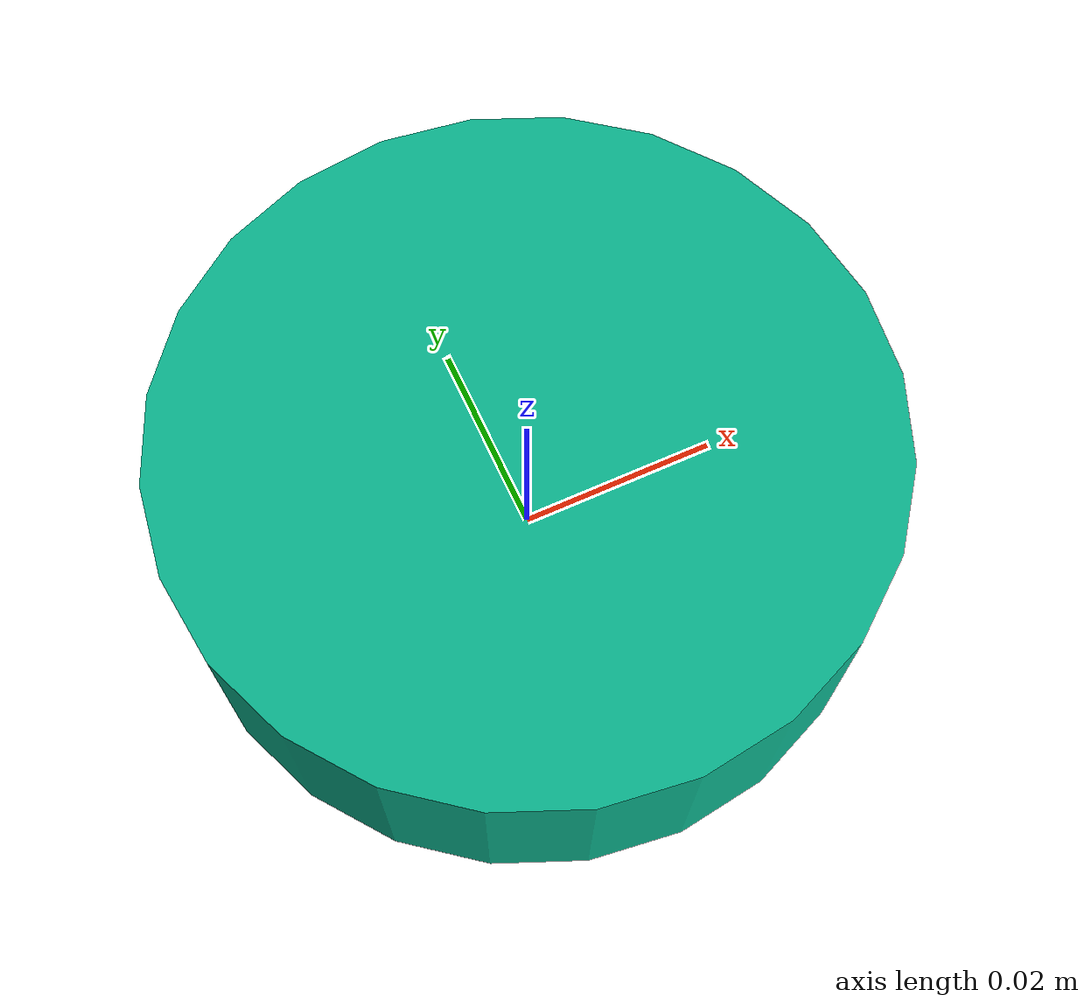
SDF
<sdf version="1.7">
  <model name="disc_34">
    <link name="base_link">
      <inertial>
        <mass>0.05</mass>
        <inertia>
          <ixx>7.91e-06</ixx>
          <ixy>0</ixy>
          <ixz>0</ixz>
          <iyy>7.91e-06</iyy>
          <iyz>0</iyz>
          <izz>1.56e-05</izz>
        </inertia>
        <pose>0 0 0.0025 0 0 0</pose>
      </inertial>
      <pose>0 0 0 0 0 0</pose>
      <visual name="visual">
        <pose>0 0 0.01 0 0 0</pose>
        <geometry>
            <cylinder>
              <radius>0.034</radius>
              <length>0.02</length>
            </cylinder>
        </geometry>
        <material>
          <diffuse>0.04509127446542616 0.7134108045203582 0.5659770662683483 1</diffuse>
        </material>
      </visual>
      <collision name="collision">
        <pose>0 0 0.01 0 0 0</pose>
        <geometry>
            <cylinder>
              <radius>0.034</radius>
              <length>0.02</length>
            </cylinder>
        </geometry>
      </collision>
      <collision name="ball1">
        <pose>0.024041630560342617 0.024041630560342617 0 0 0 0</pose>
        <geometry>
          <sphere>
            <radius>1e-07</radius>
          </sphere>
        </geometry>
      </collision>
      <collision name="ball2">
        <pose>-0.024041630560342617 0.024041630560342617 0 0 0 0</pose>
        <geometry>
          <sphere>
            <radius>1e-07</radius>
          </sphere>
        </geometry>
      </collision>
      <collision name="ball3">
        <pose>0.024041630560342617 -0.024041630560342617 0 0 0 0</pose>
        <geometry>
          <sphere>
            <radius>1e-07</radius>
          </sphere>
        </geometry>
      </collision>
      <collision name="ball4">
        <pose>-0.024041630560342617 -0.024041630560342617 0 0 0 0</pose>
        <geometry>
          <sphere>
            <radius>1e-07</radius>
          </sphere>
        </geometry>
      </collision>
    </link>
  </model>
</sdf>
